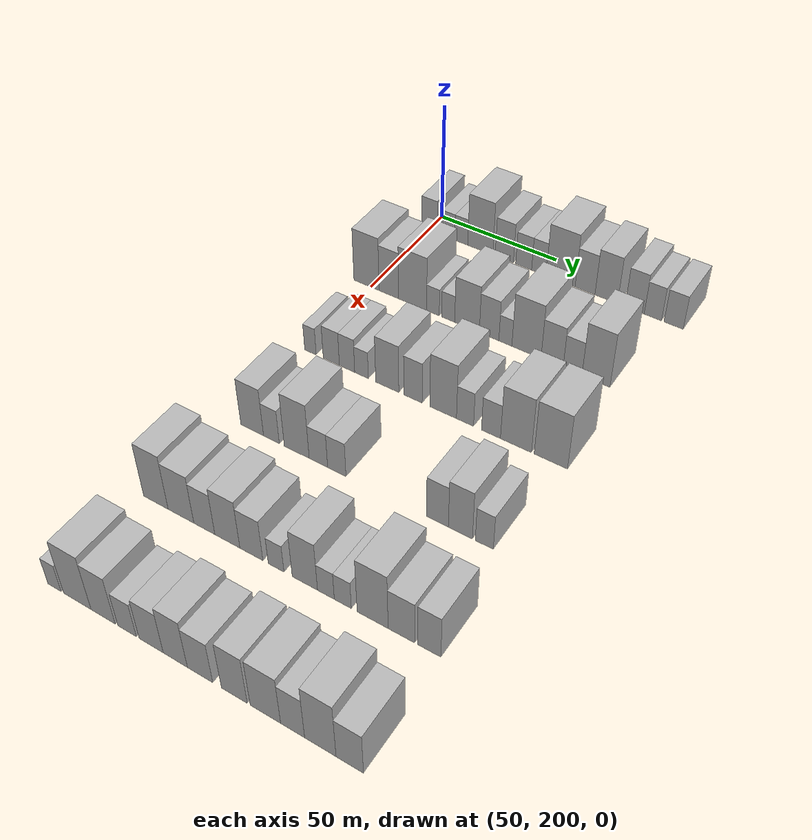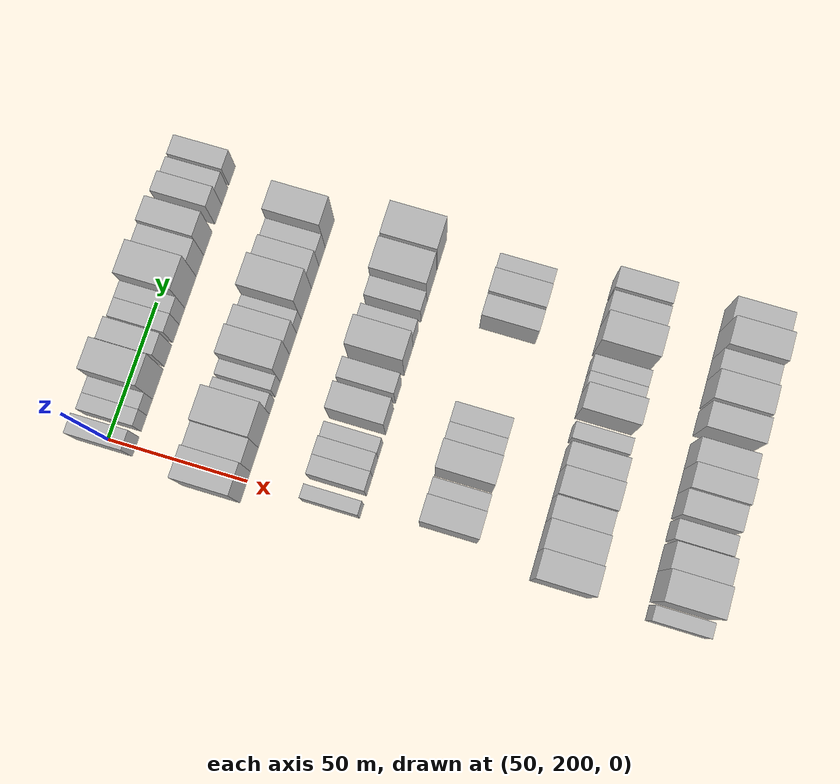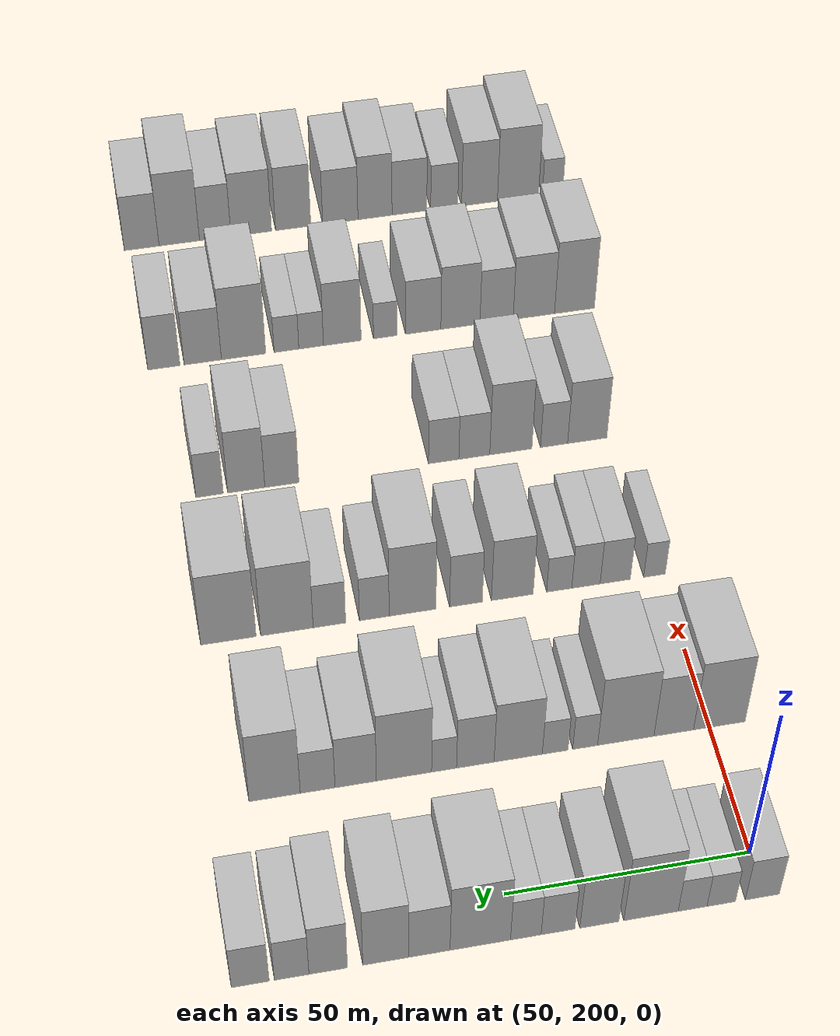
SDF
<sdf version="1.6">
 <world name="default">
  <model name="building_92">
   <static>1</static>
   <pose>50.0000 200.2904 0 0.000000 0.000000 0.000000</pose>
   <link name="link">
    <pose>0 0 7.50 0 0 0</pose>
    <collision name="collision"><geometry><box><size>20.0000 6.9304 15.0000</size></box></geometry></collision>
    <visual name="visual">
     <cast_shadows>0</cast_shadows>
     <geometry><box><size>20.0000 6.9304 15.0000</size></box></geometry>
     <material>
      <script>
       <uri>model://HANNAS_wall/materials/scripts</uri>
       <uri>model://HANNAS_wall/materials/textures</uri>
       <name>vrc/HANNAS_wall</name>
      </script>
     </material>
    </visual>
   </link>
  </model>
  <model name="building_93">
   <static>1</static>
   <pose>50.0000 208.6465 0 0.000000 0.000000 0.000000</pose>
   <link name="link">
    <pose>0 0 6.00 0 0 0</pose>
    <collision name="collision"><geometry><box><size>20.0000 5.7820 12.0000</size></box></geometry></collision>
    <visual name="visual">
     <cast_shadows>0</cast_shadows>
     <geometry><box><size>20.0000 5.7820 12.0000</size></box></geometry>
     <material>
      <script>
       <uri>model://HANNAS_wall/materials/scripts</uri>
       <uri>model://HANNAS_wall/materials/textures</uri>
       <name>vrc/HANNAS_wall</name>
      </script>
     </material>
    </visual>
   </link>
  </model>
  <model name="building_94">
   <static>1</static>
   <pose>50.0000 214.4517 0 0.000000 0.000000 0.000000</pose>
   <link name="link">
    <pose>0 0 6.00 0 0 0</pose>
    <collision name="collision"><geometry><box><size>20.0000 5.8285 12.0000</size></box></geometry></collision>
    <visual name="visual">
     <cast_shadows>0</cast_shadows>
     <geometry><box><size>20.0000 5.8285 12.0000</size></box></geometry>
     <material>
      <script>
       <uri>model://HANNAS_wall/materials/scripts</uri>
       <uri>model://HANNAS_wall/materials/textures</uri>
       <name>vrc/HANNAS_wall</name>
      </script>
     </material>
    </visual>
   </link>
  </model>
  <model name="building_95">
   <static>1</static>
   <pose>50.0000 222.8467 0 0.000000 0.000000 0.000000</pose>
   <link name="link">
    <pose>0 0 12.00 0 0 0</pose>
    <collision name="collision"><geometry><box><size>20.0000 10.9615 24.0000</size></box></geometry></collision>
    <visual name="visual">
     <cast_shadows>0</cast_shadows>
     <geometry><box><size>20.0000 10.9615 24.0000</size></box></geometry>
     <material>
      <script>
       <uri>model://HANNAS_wall/materials/scripts</uri>
       <uri>model://HANNAS_wall/materials/textures</uri>
       <name>vrc/HANNAS_wall</name>
      </script>
     </material>
    </visual>
   </link>
  </model>
  <model name="building_96">
   <static>1</static>
   <pose>50.0000 233.2390 0 0.000000 0.000000 0.000000</pose>
   <link name="link">
    <pose>0 0 9.00 0 0 0</pose>
    <collision name="collision"><geometry><box><size>20.0000 7.8230 18.0000</size></box></geometry></collision>
    <visual name="visual">
     <cast_shadows>0</cast_shadows>
     <geometry><box><size>20.0000 7.8230 18.0000</size></box></geometry>
     <material>
      <script>
       <uri>model://HANNAS_wall/materials/scripts</uri>
       <uri>model://HANNAS_wall/materials/textures</uri>
       <name>vrc/HANNAS_wall</name>
      </script>
     </material>
    </visual>
   </link>
  </model>
  <model name="building_97">
   <static>1</static>
   <pose>50.0000 241.5161 0 0.000000 0.000000 0.000000</pose>
   <link name="link">
    <pose>0 0 7.50 0 0 0</pose>
    <collision name="collision"><geometry><box><size>20.0000 6.7313 15.0000</size></box></geometry></collision>
    <visual name="visual">
     <cast_shadows>0</cast_shadows>
     <geometry><box><size>20.0000 6.7313 15.0000</size></box></geometry>
     <material>
      <script>
       <uri>model://HANNAS_wall/materials/scripts</uri>
       <uri>model://HANNAS_wall/materials/textures</uri>
       <name>vrc/HANNAS_wall</name>
      </script>
     </material>
    </visual>
   </link>
  </model>
  <model name="building_98">
   <static>1</static>
   <pose>50.0000 247.9279 0 0.000000 0.000000 0.000000</pose>
   <link name="link">
    <pose>0 0 7.50 0 0 0</pose>
    <collision name="collision"><geometry><box><size>20.0000 6.0922 15.0000</size></box></geometry></collision>
    <visual name="visual">
     <cast_shadows>0</cast_shadows>
     <geometry><box><size>20.0000 6.0922 15.0000</size></box></geometry>
     <material>
      <script>
       <uri>model://HANNAS_wall/materials/scripts</uri>
       <uri>model://HANNAS_wall/materials/textures</uri>
       <name>vrc/HANNAS_wall</name>
      </script>
     </material>
    </visual>
   </link>
  </model>
  <model name="building_99">
   <static>1</static>
   <pose>50.0000 256.9598 0 0.000000 0.000000 0.000000</pose>
   <link name="link">
    <pose>0 0 12.00 0 0 0</pose>
    <collision name="collision"><geometry><box><size>20.0000 11.9715 24.0000</size></box></geometry></collision>
    <visual name="visual">
     <cast_shadows>0</cast_shadows>
     <geometry><box><size>20.0000 11.9715 24.0000</size></box></geometry>
     <material>
      <script>
       <uri>model://HANNAS_wall/materials/scripts</uri>
       <uri>model://HANNAS_wall/materials/textures</uri>
       <name>vrc/HANNAS_wall</name>
      </script>
     </material>
    </visual>
   </link>
  </model>
  <model name="building_100">
   <static>1</static>
   <pose>50.0000 266.9800 0 0.000000 0.000000 0.000000</pose>
   <link name="link">
    <pose>0 0 9.00 0 0 0</pose>
    <collision name="collision"><geometry><box><size>20.0000 8.0691 18.0000</size></box></geometry></collision>
    <visual name="visual">
     <cast_shadows>0</cast_shadows>
     <geometry><box><size>20.0000 8.0691 18.0000</size></box></geometry>
     <material>
      <script>
       <uri>model://HANNAS_wall/materials/scripts</uri>
       <uri>model://HANNAS_wall/materials/textures</uri>
       <name>vrc/HANNAS_wall</name>
      </script>
     </material>
    </visual>
   </link>
  </model>
  <model name="building_101">
   <static>1</static>
   <pose>50.0000 275.5455 0 0.000000 0.000000 0.000000</pose>
   <link name="link">
    <pose>0 0 10.50 0 0 0</pose>
    <collision name="collision"><geometry><box><size>20.0000 9.0618 21.0000</size></box></geometry></collision>
    <visual name="visual">
     <cast_shadows>0</cast_shadows>
     <geometry><box><size>20.0000 9.0618 21.0000</size></box></geometry>
     <material>
      <script>
       <uri>model://HANNAS_wall/materials/scripts</uri>
       <uri>model://HANNAS_wall/materials/textures</uri>
       <name>vrc/HANNAS_wall</name>
      </script>
     </material>
    </visual>
   </link>
  </model>
  <model name="building_102">
   <static>1</static>
   <pose>50.0000 286.8204 0 0.000000 0.000000 0.000000</pose>
   <link name="link">
    <pose>0 0 9.00 0 0 0</pose>
    <collision name="collision"><geometry><box><size>20.0000 7.4881 18.0000</size></box></geometry></collision>
    <visual name="visual">
     <cast_shadows>0</cast_shadows>
     <geometry><box><size>20.0000 7.4881 18.0000</size></box></geometry>
     <material>
      <script>
       <uri>model://HANNAS_wall/materials/scripts</uri>
       <uri>model://HANNAS_wall/materials/textures</uri>
       <name>vrc/HANNAS_wall</name>
      </script>
     </material>
    </visual>
   </link>
  </model>
  <model name="building_103">
   <static>1</static>
   <pose>50.0000 293.9209 0 0.000000 0.000000 0.000000</pose>
   <link name="link">
    <pose>0 0 7.50 0 0 0</pose>
    <collision name="collision"><geometry><box><size>20.0000 6.7129 15.0000</size></box></geometry></collision>
    <visual name="visual">
     <cast_shadows>0</cast_shadows>
     <geometry><box><size>20.0000 6.7129 15.0000</size></box></geometry>
     <material>
      <script>
       <uri>model://HANNAS_wall/materials/scripts</uri>
       <uri>model://HANNAS_wall/materials/textures</uri>
       <name>vrc/HANNAS_wall</name>
      </script>
     </material>
    </visual>
   </link>
  </model>
  <model name="building_104">
   <static>1</static>
   <pose>50.0000 301.9484 0 0.000000 0.000000 0.000000</pose>
   <link name="link">
    <pose>0 0 7.50 0 0 0</pose>
    <collision name="collision"><geometry><box><size>20.0000 7.3420 15.0000</size></box></geometry></collision>
    <visual name="visual">
     <cast_shadows>0</cast_shadows>
     <geometry><box><size>20.0000 7.3420 15.0000</size></box></geometry>
     <material>
      <script>
       <uri>model://HANNAS_wall/materials/scripts</uri>
       <uri>model://HANNAS_wall/materials/textures</uri>
       <name>vrc/HANNAS_wall</name>
      </script>
     </material>
    </visual>
   </link>
  </model>
  <model name="building_231">
   <static>1</static>
   <pose>90.0000 197.9401 0 0.000000 0.000000 0.000000</pose>
   <link name="link">
    <pose>0 0 12.00 0 0 0</pose>
    <collision name="collision"><geometry><box><size>20.0000 11.0689 24.0000</size></box></geometry></collision>
    <visual name="visual">
     <cast_shadows>0</cast_shadows>
     <geometry><box><size>20.0000 11.0689 24.0000</size></box></geometry>
     <material>
      <script>
       <uri>model://HANNAS_wall/materials/scripts</uri>
       <uri>model://HANNAS_wall/materials/textures</uri>
       <name>vrc/HANNAS_wall</name>
      </script>
     </material>
    </visual>
   </link>
  </model>
  <model name="building_232">
   <static>1</static>
   <pose>90.0000 207.7027 0 0.000000 0.000000 0.000000</pose>
   <link name="link">
    <pose>0 0 10.50 0 0 0</pose>
    <collision name="collision"><geometry><box><size>20.0000 8.4563 21.0000</size></box></geometry></collision>
    <visual name="visual">
     <cast_shadows>0</cast_shadows>
     <geometry><box><size>20.0000 8.4563 21.0000</size></box></geometry>
     <material>
      <script>
       <uri>model://HANNAS_wall/materials/scripts</uri>
       <uri>model://HANNAS_wall/materials/textures</uri>
       <name>vrc/HANNAS_wall</name>
      </script>
     </material>
    </visual>
   </link>
  </model>
  <model name="building_233">
   <static>1</static>
   <pose>90.0000 217.9192 0 0.000000 0.000000 0.000000</pose>
   <link name="link">
    <pose>0 0 12.00 0 0 0</pose>
    <collision name="collision"><geometry><box><size>20.0000 11.9768 24.0000</size></box></geometry></collision>
    <visual name="visual">
     <cast_shadows>0</cast_shadows>
     <geometry><box><size>20.0000 11.9768 24.0000</size></box></geometry>
     <material>
      <script>
       <uri>model://HANNAS_wall/materials/scripts</uri>
       <uri>model://HANNAS_wall/materials/textures</uri>
       <name>vrc/HANNAS_wall</name>
      </script>
     </material>
    </visual>
   </link>
  </model>
  <model name="building_234">
   <static>1</static>
   <pose>90.0000 226.5454 0 0.000000 0.000000 0.000000</pose>
   <link name="link">
    <pose>0 0 6.00 0 0 0</pose>
    <collision name="collision"><geometry><box><size>20.0000 5.2756 12.0000</size></box></geometry></collision>
    <visual name="visual">
     <cast_shadows>0</cast_shadows>
     <geometry><box><size>20.0000 5.2756 12.0000</size></box></geometry>
     <material>
      <script>
       <uri>model://HANNAS_wall/materials/scripts</uri>
       <uri>model://HANNAS_wall/materials/textures</uri>
       <name>vrc/HANNAS_wall</name>
      </script>
     </material>
    </visual>
   </link>
  </model>
  <model name="building_235">
   <static>1</static>
   <pose>90.0000 232.8923 0 0.000000 0.000000 0.000000</pose>
   <link name="link">
    <pose>0 0 6.00 0 0 0</pose>
    <collision name="collision"><geometry><box><size>20.0000 5.4180 12.0000</size></box></geometry></collision>
    <visual name="visual">
     <cast_shadows>0</cast_shadows>
     <geometry><box><size>20.0000 5.4180 12.0000</size></box></geometry>
     <material>
      <script>
       <uri>model://HANNAS_wall/materials/scripts</uri>
       <uri>model://HANNAS_wall/materials/textures</uri>
       <name>vrc/HANNAS_wall</name>
      </script>
     </material>
    </visual>
   </link>
  </model>
  <model name="building_236">
   <static>1</static>
   <pose>90.0000 240.6736 0 0.000000 0.000000 0.000000</pose>
   <link name="link">
    <pose>0 0 10.50 0 0 0</pose>
    <collision name="collision"><geometry><box><size>20.0000 10.1447 21.0000</size></box></geometry></collision>
    <visual name="visual">
     <cast_shadows>0</cast_shadows>
     <geometry><box><size>20.0000 10.1447 21.0000</size></box></geometry>
     <material>
      <script>
       <uri>model://HANNAS_wall/materials/scripts</uri>
       <uri>model://HANNAS_wall/materials/textures</uri>
       <name>vrc/HANNAS_wall</name>
      </script>
     </material>
    </visual>
   </link>
  </model>
  <model name="building_237">
   <static>1</static>
   <pose>90.0000 249.6774 0 0.000000 0.000000 0.000000</pose>
   <link name="link">
    <pose>0 0 9.00 0 0 0</pose>
    <collision name="collision"><geometry><box><size>20.0000 7.8629 18.0000</size></box></geometry></collision>
    <visual name="visual">
     <cast_shadows>0</cast_shadows>
     <geometry><box><size>20.0000 7.8629 18.0000</size></box></geometry>
     <material>
      <script>
       <uri>model://HANNAS_wall/materials/scripts</uri>
       <uri>model://HANNAS_wall/materials/textures</uri>
       <name>vrc/HANNAS_wall</name>
      </script>
     </material>
    </visual>
   </link>
  </model>
  <model name="building_238">
   <static>1</static>
   <pose>90.0000 256.2060 0 0.000000 0.000000 0.000000</pose>
   <link name="link">
    <pose>0 0 6.00 0 0 0</pose>
    <collision name="collision"><geometry><box><size>20.0000 5.1942 12.0000</size></box></geometry></collision>
    <visual name="visual">
     <cast_shadows>0</cast_shadows>
     <geometry><box><size>20.0000 5.1942 12.0000</size></box></geometry>
     <material>
      <script>
       <uri>model://HANNAS_wall/materials/scripts</uri>
       <uri>model://HANNAS_wall/materials/textures</uri>
       <name>vrc/HANNAS_wall</name>
      </script>
     </material>
    </visual>
   </link>
  </model>
  <model name="building_239">
   <static>1</static>
   <pose>90.0000 264.5416 0 0.000000 0.000000 0.000000</pose>
   <link name="link">
    <pose>0 0 12.00 0 0 0</pose>
    <collision name="collision"><geometry><box><size>20.0000 11.4769 24.0000</size></box></geometry></collision>
    <visual name="visual">
     <cast_shadows>0</cast_shadows>
     <geometry><box><size>20.0000 11.4769 24.0000</size></box></geometry>
     <material>
      <script>
       <uri>model://HANNAS_wall/materials/scripts</uri>
       <uri>model://HANNAS_wall/materials/textures</uri>
       <name>vrc/HANNAS_wall</name>
      </script>
     </material>
    </visual>
   </link>
  </model>
  <model name="building_240">
   <static>1</static>
   <pose>90.0000 274.5578 0 0.000000 0.000000 0.000000</pose>
   <link name="link">
    <pose>0 0 9.00 0 0 0</pose>
    <collision name="collision"><geometry><box><size>20.0000 8.5555 18.0000</size></box></geometry></collision>
    <visual name="visual">
     <cast_shadows>0</cast_shadows>
     <geometry><box><size>20.0000 8.5555 18.0000</size></box></geometry>
     <material>
      <script>
       <uri>model://HANNAS_wall/materials/scripts</uri>
       <uri>model://HANNAS_wall/materials/textures</uri>
       <name>vrc/HANNAS_wall</name>
      </script>
     </material>
    </visual>
   </link>
  </model>
  <model name="building_241">
   <static>1</static>
   <pose>90.0000 282.4095 0 0.000000 0.000000 0.000000</pose>
   <link name="link">
    <pose>0 0 7.50 0 0 0</pose>
    <collision name="collision"><geometry><box><size>20.0000 7.1480 15.0000</size></box></geometry></collision>
    <visual name="visual">
     <cast_shadows>0</cast_shadows>
     <geometry><box><size>20.0000 7.1480 15.0000</size></box></geometry>
     <material>
      <script>
       <uri>model://HANNAS_wall/materials/scripts</uri>
       <uri>model://HANNAS_wall/materials/textures</uri>
       <name>vrc/HANNAS_wall</name>
      </script>
     </material>
    </visual>
   </link>
  </model>
  <model name="building_242">
   <static>1</static>
   <pose>90.0000 291.2404 0 0.000000 0.000000 0.000000</pose>
   <link name="link">
    <pose>0 0 12.00 0 0 0</pose>
    <collision name="collision"><geometry><box><size>20.0000 10.5138 24.0000</size></box></geometry></collision>
    <visual name="visual">
     <cast_shadows>0</cast_shadows>
     <geometry><box><size>20.0000 10.5138 24.0000</size></box></geometry>
     <material>
      <script>
       <uri>model://HANNAS_wall/materials/scripts</uri>
       <uri>model://HANNAS_wall/materials/textures</uri>
       <name>vrc/HANNAS_wall</name>
      </script>
     </material>
    </visual>
   </link>
  </model>
  <model name="building_371">
   <static>1</static>
   <pose>130.0000 201.4833 0 0.000000 0.000000 0.000000</pose>
   <link name="link">
    <pose>0 0 6.00 0 0 0</pose>
    <collision name="collision"><geometry><box><size>20.0000 4.8575 12.0000</size></box></geometry></collision>
    <visual name="visual">
     <cast_shadows>0</cast_shadows>
     <geometry><box><size>20.0000 4.8575 12.0000</size></box></geometry>
     <material>
      <script>
       <uri>model://HANNAS_wall/materials/scripts</uri>
       <uri>model://HANNAS_wall/materials/textures</uri>
       <name>vrc/HANNAS_wall</name>
      </script>
     </material>
    </visual>
   </link>
  </model>
  <model name="building_372">
   <static>1</static>
   <pose>130.0000 210.2934 0 0.000000 0.000000 0.000000</pose>
   <link name="link">
    <pose>0 0 7.50 0 0 0</pose>
    <collision name="collision"><geometry><box><size>20.0000 6.7626 15.0000</size></box></geometry></collision>
    <visual name="visual">
     <cast_shadows>0</cast_shadows>
     <geometry><box><size>20.0000 6.7626 15.0000</size></box></geometry>
     <material>
      <script>
       <uri>model://HANNAS_wall/materials/scripts</uri>
       <uri>model://HANNAS_wall/materials/textures</uri>
       <name>vrc/HANNAS_wall</name>
      </script>
     </material>
    </visual>
   </link>
  </model>
  <model name="building_373">
   <static>1</static>
   <pose>130.0000 216.8389 0 0.000000 0.000000 0.000000</pose>
   <link name="link">
    <pose>0 0 7.50 0 0 0</pose>
    <collision name="collision"><geometry><box><size>20.0000 6.3285 15.0000</size></box></geometry></collision>
    <visual name="visual">
     <cast_shadows>0</cast_shadows>
     <geometry><box><size>20.0000 6.3285 15.0000</size></box></geometry>
     <material>
      <script>
       <uri>model://HANNAS_wall/materials/scripts</uri>
       <uri>model://HANNAS_wall/materials/textures</uri>
       <name>vrc/HANNAS_wall</name>
      </script>
     </material>
    </visual>
   </link>
  </model>
  <model name="building_374">
   <static>1</static>
   <pose>130.0000 222.7986 0 0.000000 0.000000 0.000000</pose>
   <link name="link">
    <pose>0 0 6.00 0 0 0</pose>
    <collision name="collision"><geometry><box><size>20.0000 5.5908 12.0000</size></box></geometry></collision>
    <visual name="visual">
     <cast_shadows>0</cast_shadows>
     <geometry><box><size>20.0000 5.5908 12.0000</size></box></geometry>
     <material>
      <script>
       <uri>model://HANNAS_wall/materials/scripts</uri>
       <uri>model://HANNAS_wall/materials/textures</uri>
       <name>vrc/HANNAS_wall</name>
      </script>
     </material>
    </visual>
   </link>
  </model>
  <model name="building_375">
   <static>1</static>
   <pose>130.0000 233.2290 0 0.000000 0.000000 0.000000</pose>
   <link name="link">
    <pose>0 0 10.50 0 0 0</pose>
    <collision name="collision"><geometry><box><size>20.0000 9.2699 21.0000</size></box></geometry></collision>
    <visual name="visual">
     <cast_shadows>0</cast_shadows>
     <geometry><box><size>20.0000 9.2699 21.0000</size></box></geometry>
     <material>
      <script>
       <uri>model://HANNAS_wall/materials/scripts</uri>
       <uri>model://HANNAS_wall/materials/textures</uri>
       <name>vrc/HANNAS_wall</name>
      </script>
     </material>
    </visual>
   </link>
  </model>
  <model name="building_376">
   <static>1</static>
   <pose>130.0000 243.4726 0 0.000000 0.000000 0.000000</pose>
   <link name="link">
    <pose>0 0 9.00 0 0 0</pose>
    <collision name="collision"><geometry><box><size>20.0000 7.2174 18.0000</size></box></geometry></collision>
    <visual name="visual">
     <cast_shadows>0</cast_shadows>
     <geometry><box><size>20.0000 7.2174 18.0000</size></box></geometry>
     <material>
      <script>
       <uri>model://HANNAS_wall/materials/scripts</uri>
       <uri>model://HANNAS_wall/materials/textures</uri>
       <name>vrc/HANNAS_wall</name>
      </script>
     </material>
    </visual>
   </link>
  </model>
  <model name="building_377">
   <static>1</static>
   <pose>130.0000 255.2172 0 0.000000 0.000000 0.000000</pose>
   <link name="link">
    <pose>0 0 12.00 0 0 0</pose>
    <collision name="collision"><geometry><box><size>20.0000 10.2718 24.0000</size></box></geometry></collision>
    <visual name="visual">
     <cast_shadows>0</cast_shadows>
     <geometry><box><size>20.0000 10.2718 24.0000</size></box></geometry>
     <material>
      <script>
       <uri>model://HANNAS_wall/materials/scripts</uri>
       <uri>model://HANNAS_wall/materials/textures</uri>
       <name>vrc/HANNAS_wall</name>
      </script>
     </material>
    </visual>
   </link>
  </model>
  <model name="building_378">
   <static>1</static>
   <pose>130.0000 263.6012 0 0.000000 0.000000 0.000000</pose>
   <link name="link">
    <pose>0 0 7.50 0 0 0</pose>
    <collision name="collision"><geometry><box><size>20.0000 6.4962 15.0000</size></box></geometry></collision>
    <visual name="visual">
     <cast_shadows>0</cast_shadows>
     <geometry><box><size>20.0000 6.4962 15.0000</size></box></geometry>
     <material>
      <script>
       <uri>model://HANNAS_wall/materials/scripts</uri>
       <uri>model://HANNAS_wall/materials/textures</uri>
       <name>vrc/HANNAS_wall</name>
      </script>
     </material>
    </visual>
   </link>
  </model>
  <model name="building_379">
   <static>1</static>
   <pose>130.0000 273.3786 0 0.000000 0.000000 0.000000</pose>
   <link name="link">
    <pose>0 0 7.50 0 0 0</pose>
    <collision name="collision"><geometry><box><size>20.0000 7.0585 15.0000</size></box></geometry></collision>
    <visual name="visual">
     <cast_shadows>0</cast_shadows>
     <geometry><box><size>20.0000 7.0585 15.0000</size></box></geometry>
     <material>
      <script>
       <uri>model://HANNAS_wall/materials/scripts</uri>
       <uri>model://HANNAS_wall/materials/textures</uri>
       <name>vrc/HANNAS_wall</name>
      </script>
     </material>
    </visual>
   </link>
  </model>
  <model name="building_380">
   <static>1</static>
   <pose>130.0000 282.5833 0 0.000000 0.000000 0.000000</pose>
   <link name="link">
    <pose>0 0 12.00 0 0 0</pose>
    <collision name="collision"><geometry><box><size>20.0000 11.3509 24.0000</size></box></geometry></collision>
    <visual name="visual">
     <cast_shadows>0</cast_shadows>
     <geometry><box><size>20.0000 11.3509 24.0000</size></box></geometry>
     <material>
      <script>
       <uri>model://HANNAS_wall/materials/scripts</uri>
       <uri>model://HANNAS_wall/materials/textures</uri>
       <name>vrc/HANNAS_wall</name>
      </script>
     </material>
    </visual>
   </link>
  </model>
  <model name="building_381">
   <static>1</static>
   <pose>130.0000 295.2302 0 0.000000 0.000000 0.000000</pose>
   <link name="link">
    <pose>0 0 12.00 0 0 0</pose>
    <collision name="collision"><geometry><box><size>20.0000 11.9431 24.0000</size></box></geometry></collision>
    <visual name="visual">
     <cast_shadows>0</cast_shadows>
     <geometry><box><size>20.0000 11.9431 24.0000</size></box></geometry>
     <material>
      <script>
       <uri>model://HANNAS_wall/materials/scripts</uri>
       <uri>model://HANNAS_wall/materials/textures</uri>
       <name>vrc/HANNAS_wall</name>
      </script>
     </material>
    </visual>
   </link>
  </model>
  <model name="building_502">
   <static>1</static>
   <pose>170.0000 207.0023 0 0.000000 0.000000 0.000000</pose>
   <link name="link">
    <pose>0 0 10.50 0 0 0</pose>
    <collision name="collision"><geometry><box><size>20.0000 9.2084 21.0000</size></box></geometry></collision>
    <visual name="visual">
     <cast_shadows>0</cast_shadows>
     <geometry><box><size>20.0000 9.2084 21.0000</size></box></geometry>
     <material>
      <script>
       <uri>model://HANNAS_wall/materials/scripts</uri>
       <uri>model://HANNAS_wall/materials/textures</uri>
       <name>vrc/HANNAS_wall</name>
      </script>
     </material>
    </visual>
   </link>
  </model>
  <model name="building_503">
   <static>1</static>
   <pose>170.0000 214.7825 0 0.000000 0.000000 0.000000</pose>
   <link name="link">
    <pose>0 0 7.50 0 0 0</pose>
    <collision name="collision"><geometry><box><size>20.0000 6.3521 15.0000</size></box></geometry></collision>
    <visual name="visual">
     <cast_shadows>0</cast_shadows>
     <geometry><box><size>20.0000 6.3521 15.0000</size></box></geometry>
     <material>
      <script>
       <uri>model://HANNAS_wall/materials/scripts</uri>
       <uri>model://HANNAS_wall/materials/textures</uri>
       <name>vrc/HANNAS_wall</name>
      </script>
     </material>
    </visual>
   </link>
  </model>
  <model name="building_504">
   <static>1</static>
   <pose>170.0000 224.8729 0 0.000000 0.000000 0.000000</pose>
   <link name="link">
    <pose>0 0 12.00 0 0 0</pose>
    <collision name="collision"><geometry><box><size>20.0000 9.8288 24.0000</size></box></geometry></collision>
    <visual name="visual">
     <cast_shadows>0</cast_shadows>
     <geometry><box><size>20.0000 9.8288 24.0000</size></box></geometry>
     <material>
      <script>
       <uri>model://HANNAS_wall/materials/scripts</uri>
       <uri>model://HANNAS_wall/materials/textures</uri>
       <name>vrc/HANNAS_wall</name>
      </script>
     </material>
    </visual>
   </link>
  </model>
  <model name="building_505">
   <static>1</static>
   <pose>170.0000 233.3750 0 0.000000 0.000000 0.000000</pose>
   <link name="link">
    <pose>0 0 7.50 0 0 0</pose>
    <collision name="collision"><geometry><box><size>20.0000 7.1753 15.0000</size></box></geometry></collision>
    <visual name="visual">
     <cast_shadows>0</cast_shadows>
     <geometry><box><size>20.0000 7.1753 15.0000</size></box></geometry>
     <material>
      <script>
       <uri>model://HANNAS_wall/materials/scripts</uri>
       <uri>model://HANNAS_wall/materials/textures</uri>
       <name>vrc/HANNAS_wall</name>
      </script>
     </material>
    </visual>
   </link>
  </model>
  <model name="building_506">
   <static>1</static>
   <pose>170.0000 240.4810 0 0.000000 0.000000 0.000000</pose>
   <link name="link">
    <pose>0 0 7.50 0 0 0</pose>
    <collision name="collision"><geometry><box><size>20.0000 7.0367 15.0000</size></box></geometry></collision>
    <visual name="visual">
     <cast_shadows>0</cast_shadows>
     <geometry><box><size>20.0000 7.0367 15.0000</size></box></geometry>
     <material>
      <script>
       <uri>model://HANNAS_wall/materials/scripts</uri>
       <uri>model://HANNAS_wall/materials/textures</uri>
       <name>vrc/HANNAS_wall</name>
      </script>
     </material>
    </visual>
   </link>
  </model>
  <model name="building_507">
   <static>1</static>
   <pose>170.0000 277.6161 0 0.000000 0.000000 0.000000</pose>
   <link name="link">
    <pose>0 0 9.00 0 0 0</pose>
    <collision name="collision"><geometry><box><size>20.0000 7.7445 18.0000</size></box></geometry></collision>
    <visual name="visual">
     <cast_shadows>0</cast_shadows>
     <geometry><box><size>20.0000 7.7445 18.0000</size></box></geometry>
     <material>
      <script>
       <uri>model://HANNAS_wall/materials/scripts</uri>
       <uri>model://HANNAS_wall/materials/textures</uri>
       <name>vrc/HANNAS_wall</name>
      </script>
     </material>
    </visual>
   </link>
  </model>
  <model name="building_508">
   <static>1</static>
   <pose>170.0000 285.7058 0 0.000000 0.000000 0.000000</pose>
   <link name="link">
    <pose>0 0 10.50 0 0 0</pose>
    <collision name="collision"><geometry><box><size>20.0000 8.4349 21.0000</size></box></geometry></collision>
    <visual name="visual">
     <cast_shadows>0</cast_shadows>
     <geometry><box><size>20.0000 8.4349 21.0000</size></box></geometry>
     <material>
      <script>
       <uri>model://HANNAS_wall/materials/scripts</uri>
       <uri>model://HANNAS_wall/materials/textures</uri>
       <name>vrc/HANNAS_wall</name>
      </script>
     </material>
    </visual>
   </link>
  </model>
  <model name="building_509">
   <static>1</static>
   <pose>170.0000 294.0233 0 0.000000 0.000000 0.000000</pose>
   <link name="link">
    <pose>0 0 7.50 0 0 0</pose>
    <collision name="collision"><geometry><box><size>20.0000 6.2000 15.0000</size></box></geometry></collision>
    <visual name="visual">
     <cast_shadows>0</cast_shadows>
     <geometry><box><size>20.0000 6.2000 15.0000</size></box></geometry>
     <material>
      <script>
       <uri>model://HANNAS_wall/materials/scripts</uri>
       <uri>model://HANNAS_wall/materials/textures</uri>
       <name>vrc/HANNAS_wall</name>
      </script>
     </material>
    </visual>
   </link>
  </model>
  <model name="building_635">
   <static>1</static>
   <pose>210.0000 200.5923 0 0.000000 0.000000 0.000000</pose>
   <link name="link">
    <pose>0 0 12.00 0 0 0</pose>
    <collision name="collision"><geometry><box><size>20.0000 9.8105 24.0000</size></box></geometry></collision>
    <visual name="visual">
     <cast_shadows>0</cast_shadows>
     <geometry><box><size>20.0000 9.8105 24.0000</size></box></geometry>
     <material>
      <script>
       <uri>model://HANNAS_wall/materials/scripts</uri>
       <uri>model://HANNAS_wall/materials/textures</uri>
       <name>vrc/HANNAS_wall</name>
      </script>
     </material>
    </visual>
   </link>
  </model>
  <model name="building_636">
   <static>1</static>
   <pose>210.0000 210.5642 0 0.000000 0.000000 0.000000</pose>
   <link name="link">
    <pose>0 0 10.50 0 0 0</pose>
    <collision name="collision"><geometry><box><size>20.0000 10.1334 21.0000</size></box></geometry></collision>
    <visual name="visual">
     <cast_shadows>0</cast_shadows>
     <geometry><box><size>20.0000 10.1334 21.0000</size></box></geometry>
     <material>
      <script>
       <uri>model://HANNAS_wall/materials/scripts</uri>
       <uri>model://HANNAS_wall/materials/textures</uri>
       <name>vrc/HANNAS_wall</name>
      </script>
     </material>
    </visual>
   </link>
  </model>
  <model name="building_637">
   <static>1</static>
   <pose>210.0000 219.6896 0 0.000000 0.000000 0.000000</pose>
   <link name="link">
    <pose>0 0 9.00 0 0 0</pose>
    <collision name="collision"><geometry><box><size>20.0000 8.1173 18.0000</size></box></geometry></collision>
    <visual name="visual">
     <cast_shadows>0</cast_shadows>
     <geometry><box><size>20.0000 8.1173 18.0000</size></box></geometry>
     <material>
      <script>
       <uri>model://HANNAS_wall/materials/scripts</uri>
       <uri>model://HANNAS_wall/materials/textures</uri>
       <name>vrc/HANNAS_wall</name>
      </script>
     </material>
    </visual>
   </link>
  </model>
  <model name="building_638">
   <static>1</static>
   <pose>210.0000 228.5032 0 0.000000 0.000000 0.000000</pose>
   <link name="link">
    <pose>0 0 10.50 0 0 0</pose>
    <collision name="collision"><geometry><box><size>20.0000 9.5100 21.0000</size></box></geometry></collision>
    <visual name="visual">
     <cast_shadows>0</cast_shadows>
     <geometry><box><size>20.0000 9.5100 21.0000</size></box></geometry>
     <material>
      <script>
       <uri>model://HANNAS_wall/materials/scripts</uri>
       <uri>model://HANNAS_wall/materials/textures</uri>
       <name>vrc/HANNAS_wall</name>
      </script>
     </material>
    </visual>
   </link>
  </model>
  <model name="building_639">
   <static>1</static>
   <pose>210.0000 237.5409 0 0.000000 0.000000 0.000000</pose>
   <link name="link">
    <pose>0 0 9.00 0 0 0</pose>
    <collision name="collision"><geometry><box><size>20.0000 8.5654 18.0000</size></box></geometry></collision>
    <visual name="visual">
     <cast_shadows>0</cast_shadows>
     <geometry><box><size>20.0000 8.5654 18.0000</size></box></geometry>
     <material>
      <script>
       <uri>model://HANNAS_wall/materials/scripts</uri>
       <uri>model://HANNAS_wall/materials/textures</uri>
       <name>vrc/HANNAS_wall</name>
      </script>
     </material>
    </visual>
   </link>
  </model>
  <model name="building_640">
   <static>1</static>
   <pose>210.0000 246.6877 0 0.000000 0.000000 0.000000</pose>
   <link name="link">
    <pose>0 0 6.00 0 0 0</pose>
    <collision name="collision"><geometry><box><size>20.0000 5.7282 12.0000</size></box></geometry></collision>
    <visual name="visual">
     <cast_shadows>0</cast_shadows>
     <geometry><box><size>20.0000 5.7282 12.0000</size></box></geometry>
     <material>
      <script>
       <uri>model://HANNAS_wall/materials/scripts</uri>
       <uri>model://HANNAS_wall/materials/textures</uri>
       <name>vrc/HANNAS_wall</name>
      </script>
     </material>
    </visual>
   </link>
  </model>
  <model name="building_641">
   <static>1</static>
   <pose>210.0000 257.0697 0 0.000000 0.000000 0.000000</pose>
   <link name="link">
    <pose>0 0 10.50 0 0 0</pose>
    <collision name="collision"><geometry><box><size>20.0000 9.0356 21.0000</size></box></geometry></collision>
    <visual name="visual">
     <cast_shadows>0</cast_shadows>
     <geometry><box><size>20.0000 9.0356 21.0000</size></box></geometry>
     <material>
      <script>
       <uri>model://HANNAS_wall/materials/scripts</uri>
       <uri>model://HANNAS_wall/materials/textures</uri>
       <name>vrc/HANNAS_wall</name>
      </script>
     </material>
    </visual>
   </link>
  </model>
  <model name="building_642">
   <static>1</static>
   <pose>210.0000 264.5406 0 0.000000 0.000000 0.000000</pose>
   <link name="link">
    <pose>0 0 6.00 0 0 0</pose>
    <collision name="collision"><geometry><box><size>20.0000 5.9063 12.0000</size></box></geometry></collision>
    <visual name="visual">
     <cast_shadows>0</cast_shadows>
     <geometry><box><size>20.0000 5.9063 12.0000</size></box></geometry>
     <material>
      <script>
       <uri>model://HANNAS_wall/materials/scripts</uri>
       <uri>model://HANNAS_wall/materials/textures</uri>
       <name>vrc/HANNAS_wall</name>
      </script>
     </material>
    </visual>
   </link>
  </model>
  <model name="building_643">
   <static>1</static>
   <pose>210.0000 270.4515 0 0.000000 0.000000 0.000000</pose>
   <link name="link">
    <pose>0 0 6.00 0 0 0</pose>
    <collision name="collision"><geometry><box><size>20.0000 5.9153 12.0000</size></box></geometry></collision>
    <visual name="visual">
     <cast_shadows>0</cast_shadows>
     <geometry><box><size>20.0000 5.9153 12.0000</size></box></geometry>
     <material>
      <script>
       <uri>model://HANNAS_wall/materials/scripts</uri>
       <uri>model://HANNAS_wall/materials/textures</uri>
       <name>vrc/HANNAS_wall</name>
      </script>
     </material>
    </visual>
   </link>
  </model>
  <model name="building_644">
   <static>1</static>
   <pose>210.0000 280.6772 0 0.000000 0.000000 0.000000</pose>
   <link name="link">
    <pose>0 0 12.00 0 0 0</pose>
    <collision name="collision"><geometry><box><size>20.0000 10.5361 24.0000</size></box></geometry></collision>
    <visual name="visual">
     <cast_shadows>0</cast_shadows>
     <geometry><box><size>20.0000 10.5361 24.0000</size></box></geometry>
     <material>
      <script>
       <uri>model://HANNAS_wall/materials/scripts</uri>
       <uri>model://HANNAS_wall/materials/textures</uri>
       <name>vrc/HANNAS_wall</name>
      </script>
     </material>
    </visual>
   </link>
  </model>
  <model name="building_645">
   <static>1</static>
   <pose>210.0000 290.3630 0 0.000000 0.000000 0.000000</pose>
   <link name="link">
    <pose>0 0 9.00 0 0 0</pose>
    <collision name="collision"><geometry><box><size>20.0000 8.8354 18.0000</size></box></geometry></collision>
    <visual name="visual">
     <cast_shadows>0</cast_shadows>
     <geometry><box><size>20.0000 8.8354 18.0000</size></box></geometry>
     <material>
      <script>
       <uri>model://HANNAS_wall/materials/scripts</uri>
       <uri>model://HANNAS_wall/materials/textures</uri>
       <name>vrc/HANNAS_wall</name>
      </script>
     </material>
    </visual>
   </link>
  </model>
  <model name="building_646">
   <static>1</static>
   <pose>210.0000 299.5739 0 0.000000 0.000000 0.000000</pose>
   <link name="link">
    <pose>0 0 9.00 0 0 0</pose>
    <collision name="collision"><geometry><box><size>20.0000 7.5865 18.0000</size></box></geometry></collision>
    <visual name="visual">
     <cast_shadows>0</cast_shadows>
     <geometry><box><size>20.0000 7.5865 18.0000</size></box></geometry>
     <material>
      <script>
       <uri>model://HANNAS_wall/materials/scripts</uri>
       <uri>model://HANNAS_wall/materials/textures</uri>
       <name>vrc/HANNAS_wall</name>
      </script>
     </material>
    </visual>
   </link>
  </model>
  <model name="building_777">
   <static>1</static>
   <pose>250.0000 196.8136 0 0.000000 0.000000 0.000000</pose>
   <link name="link">
    <pose>0 0 6.00 0 0 0</pose>
    <collision name="collision"><geometry><box><size>20.0000 5.2148 12.0000</size></box></geometry></collision>
    <visual name="visual">
     <cast_shadows>0</cast_shadows>
     <geometry><box><size>20.0000 5.2148 12.0000</size></box></geometry>
     <material>
      <script>
       <uri>model://HANNAS_wall/materials/scripts</uri>
       <uri>model://HANNAS_wall/materials/textures</uri>
       <name>vrc/HANNAS_wall</name>
      </script>
     </material>
    </visual>
   </link>
  </model>
  <model name="building_778">
   <static>1</static>
   <pose>250.0000 205.6861 0 0.000000 0.000000 0.000000</pose>
   <link name="link">
    <pose>0 0 12.00 0 0 0</pose>
    <collision name="collision"><geometry><box><size>20.0000 10.5301 24.0000</size></box></geometry></collision>
    <visual name="visual">
     <cast_shadows>0</cast_shadows>
     <geometry><box><size>20.0000 10.5301 24.0000</size></box></geometry>
     <material>
      <script>
       <uri>model://HANNAS_wall/materials/scripts</uri>
       <uri>model://HANNAS_wall/materials/textures</uri>
       <name>vrc/HANNAS_wall</name>
      </script>
     </material>
    </visual>
   </link>
  </model>
  <model name="building_779">
   <static>1</static>
   <pose>250.0000 215.5216 0 0.000000 0.000000 0.000000</pose>
   <link name="link">
    <pose>0 0 10.50 0 0 0</pose>
    <collision name="collision"><geometry><box><size>20.0000 9.1409 21.0000</size></box></geometry></collision>
    <visual name="visual">
     <cast_shadows>0</cast_shadows>
     <geometry><box><size>20.0000 9.1409 21.0000</size></box></geometry>
     <material>
      <script>
       <uri>model://HANNAS_wall/materials/scripts</uri>
       <uri>model://HANNAS_wall/materials/textures</uri>
       <name>vrc/HANNAS_wall</name>
      </script>
     </material>
    </visual>
   </link>
  </model>
  <model name="building_780">
   <static>1</static>
   <pose>250.0000 224.5314 0 0.000000 0.000000 0.000000</pose>
   <link name="link">
    <pose>0 0 7.50 0 0 0</pose>
    <collision name="collision"><geometry><box><size>20.0000 6.8787 15.0000</size></box></geometry></collision>
    <visual name="visual">
     <cast_shadows>0</cast_shadows>
     <geometry><box><size>20.0000 6.8787 15.0000</size></box></geometry>
     <material>
      <script>
       <uri>model://HANNAS_wall/materials/scripts</uri>
       <uri>model://HANNAS_wall/materials/textures</uri>
       <name>vrc/HANNAS_wall</name>
      </script>
     </material>
    </visual>
   </link>
  </model>
  <model name="building_781">
   <static>1</static>
   <pose>250.0000 233.3674 0 0.000000 0.000000 0.000000</pose>
   <link name="link">
    <pose>0 0 9.00 0 0 0</pose>
    <collision name="collision"><geometry><box><size>20.0000 8.7934 18.0000</size></box></geometry></collision>
    <visual name="visual">
     <cast_shadows>0</cast_shadows>
     <geometry><box><size>20.0000 8.7934 18.0000</size></box></geometry>
     <material>
      <script>
       <uri>model://HANNAS_wall/materials/scripts</uri>
       <uri>model://HANNAS_wall/materials/textures</uri>
       <name>vrc/HANNAS_wall</name>
      </script>
     </material>
    </visual>
   </link>
  </model>
  <model name="building_782">
   <static>1</static>
   <pose>250.0000 242.0680 0 0.000000 0.000000 0.000000</pose>
   <link name="link">
    <pose>0 0 10.50 0 0 0</pose>
    <collision name="collision"><geometry><box><size>20.0000 8.6078 21.0000</size></box></geometry></collision>
    <visual name="visual">
     <cast_shadows>0</cast_shadows>
     <geometry><box><size>20.0000 8.6078 21.0000</size></box></geometry>
     <material>
      <script>
       <uri>model://HANNAS_wall/materials/scripts</uri>
       <uri>model://HANNAS_wall/materials/textures</uri>
       <name>vrc/HANNAS_wall</name>
      </script>
     </material>
    </visual>
   </link>
  </model>
  <model name="building_783">
   <static>1</static>
   <pose>250.0000 250.8120 0 0.000000 0.000000 0.000000</pose>
   <link name="link">
    <pose>0 0 9.00 0 0 0</pose>
    <collision name="collision"><geometry><box><size>20.0000 8.8801 18.0000</size></box></geometry></collision>
    <visual name="visual">
     <cast_shadows>0</cast_shadows>
     <geometry><box><size>20.0000 8.8801 18.0000</size></box></geometry>
     <material>
      <script>
       <uri>model://HANNAS_wall/materials/scripts</uri>
       <uri>model://HANNAS_wall/materials/textures</uri>
       <name>vrc/HANNAS_wall</name>
      </script>
     </material>
    </visual>
   </link>
  </model>
  <model name="building_784">
   <static>1</static>
   <pose>250.0000 262.6544 0 0.000000 0.000000 0.000000</pose>
   <link name="link">
    <pose>0 0 10.50 0 0 0</pose>
    <collision name="collision"><geometry><box><size>20.0000 8.8047 21.0000</size></box></geometry></collision>
    <visual name="visual">
     <cast_shadows>0</cast_shadows>
     <geometry><box><size>20.0000 8.8047 21.0000</size></box></geometry>
     <material>
      <script>
       <uri>model://HANNAS_wall/materials/scripts</uri>
       <uri>model://HANNAS_wall/materials/textures</uri>
       <name>vrc/HANNAS_wall</name>
      </script>
     </material>
    </visual>
   </link>
  </model>
  <model name="building_785">
   <static>1</static>
   <pose>250.0000 273.1079 0 0.000000 0.000000 0.000000</pose>
   <link name="link">
    <pose>0 0 10.50 0 0 0</pose>
    <collision name="collision"><geometry><box><size>20.0000 10.1023 21.0000</size></box></geometry></collision>
    <visual name="visual">
     <cast_shadows>0</cast_shadows>
     <geometry><box><size>20.0000 10.1023 21.0000</size></box></geometry>
     <material>
      <script>
       <uri>model://HANNAS_wall/materials/scripts</uri>
       <uri>model://HANNAS_wall/materials/textures</uri>
       <name>vrc/HANNAS_wall</name>
      </script>
     </material>
    </visual>
   </link>
  </model>
  <model name="building_786">
   <static>1</static>
   <pose>250.0000 282.0731 0 0.000000 0.000000 0.000000</pose>
   <link name="link">
    <pose>0 0 9.00 0 0 0</pose>
    <collision name="collision"><geometry><box><size>20.0000 7.8281 18.0000</size></box></geometry></collision>
    <visual name="visual">
     <cast_shadows>0</cast_shadows>
     <geometry><box><size>20.0000 7.8281 18.0000</size></box></geometry>
     <material>
      <script>
       <uri>model://HANNAS_wall/materials/scripts</uri>
       <uri>model://HANNAS_wall/materials/textures</uri>
       <name>vrc/HANNAS_wall</name>
      </script>
     </material>
    </visual>
   </link>
  </model>
  <model name="building_787">
   <static>1</static>
   <pose>250.0000 290.9967 0 0.000000 0.000000 0.000000</pose>
   <link name="link">
    <pose>0 0 12.00 0 0 0</pose>
    <collision name="collision"><geometry><box><size>20.0000 10.0192 24.0000</size></box></geometry></collision>
    <visual name="visual">
     <cast_shadows>0</cast_shadows>
     <geometry><box><size>20.0000 10.0192 24.0000</size></box></geometry>
     <material>
      <script>
       <uri>model://HANNAS_wall/materials/scripts</uri>
       <uri>model://HANNAS_wall/materials/textures</uri>
       <name>vrc/HANNAS_wall</name>
      </script>
     </material>
    </visual>
   </link>
  </model>
  <model name="building_788">
   <static>1</static>
   <pose>250.0000 300.2935 0 0.000000 0.000000 0.000000</pose>
   <link name="link">
    <pose>0 0 9.00 0 0 0</pose>
    <collision name="collision"><geometry><box><size>20.0000 8.5744 18.0000</size></box></geometry></collision>
    <visual name="visual">
     <cast_shadows>0</cast_shadows>
     <geometry><box><size>20.0000 8.5744 18.0000</size></box></geometry>
     <material>
      <script>
       <uri>model://HANNAS_wall/materials/scripts</uri>
       <uri>model://HANNAS_wall/materials/textures</uri>
       <name>vrc/HANNAS_wall</name>
      </script>
     </material>
    </visual>
   </link>
  </model>
 </world>
</sdf>
